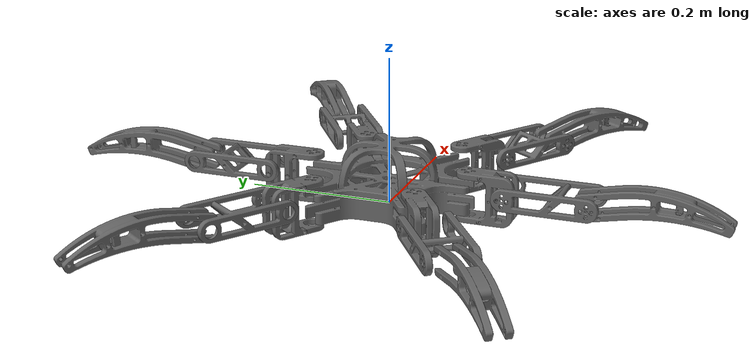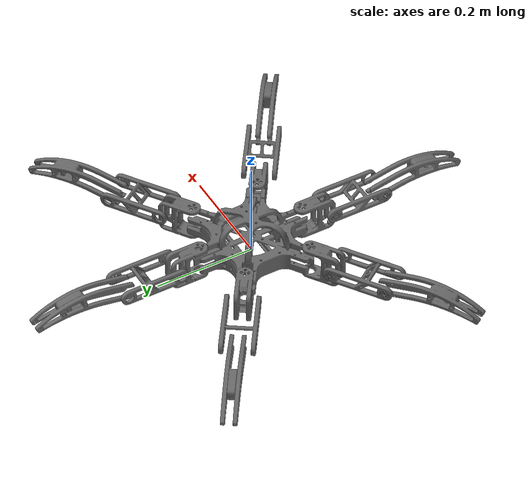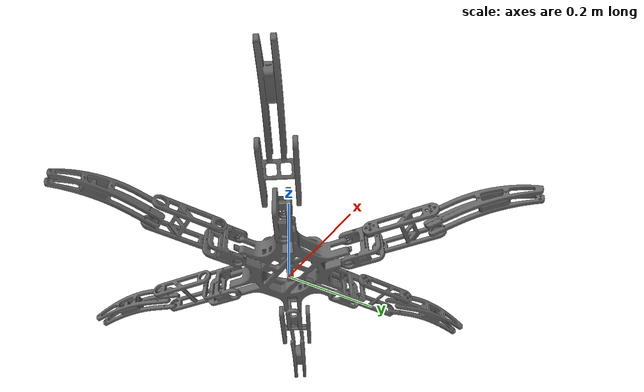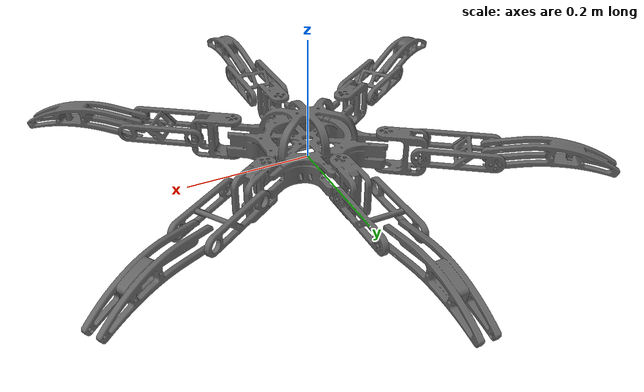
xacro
<?xml version="1.0" ?>
<robot name="hexapod" xmlns:xacro="http://ros.org/wiki/xacro">

  <xacro:include filename="$(find aecert_hexapod_description)/urdf/common_properties.xacro" />
  <xacro:include filename="$(find aecert_hexapod_description)/urdf/leg.xacro" />

  <xacro:property name="LEG_X_OFFS" value="0.1" />
  <xacro:property name="LEG_Y_OFFS" value="0.07" />
  <xacro:property name="MID_LEG_Y_OFFS" value="0.11" />
  <xacro:property name="LEG_YAW" value="0.6" />

  <link name="base_footprint"/>
  <link name="base_link">
    <inertial>
      <origin xyz="0 0 0" rpy="0 0 0" />
      <inertia
        ixx="4.2111447e-02" ixy="0" ixz="0"
        iyy="4.2111447e-02" iyz="0"
        izz="7.5254874e-02"
      />
      <mass value="1.3729096" />
    </inertial>

    <collision name="base_collision">
      <origin xyz="0 0 0.045" rpy="0 0 0" />
      <geometry>
        <box size="0.265 0.265 0.089" />
      </geometry>
    </collision>

    <visual name="base_visual">
      <origin xyz="0 0 0" rpy="0 0 0" />
      <geometry>
        <mesh scale="0.001 0.001 0.001" filename="$(find aecert_hexapod_description)/meshes/base.stl" />
      </geometry>
      <material name="light_black" />
    </visual>

  </link>

  <joint name="base_joint" type="fixed" >
    <origin xyz="0 0 0" rpy="0 0 0" />
    <parent link="base_footprint" />
    <child link="base_link" />
  </joint>

  <xacro:leg name="fl" parent="base_link" x_offs="${LEG_X_OFFS}" y_offs="${LEG_Y_OFFS}" yaw="${LEG_YAW}" />
  <xacro:leg name="fr" parent="base_link" x_offs="${LEG_X_OFFS}" y_offs="${-LEG_Y_OFFS}" yaw="${-LEG_YAW}" />
  <xacro:leg name="ml" parent="base_link" x_offs="0" y_offs="${MID_LEG_Y_OFFS}" yaw="${PI/2}" />
  <xacro:leg name="mr" parent="base_link" x_offs="0" y_offs="${-MID_LEG_Y_OFFS}" yaw="${-PI/2}" />
  <xacro:leg name="bl" parent="base_link" x_offs="${-LEG_X_OFFS}" y_offs="${LEG_Y_OFFS}" yaw="${PI-LEG_YAW}" />
  <xacro:leg name="br" parent="base_link" x_offs="${-LEG_X_OFFS}" y_offs="${-LEG_Y_OFFS}" yaw="${-PI+LEG_YAW}" />

  <xacro:include filename="$(find aecert_hexapod_control)/config/xacro_controls/leg_joint_control.xacro" />

  <ros2_control name="GazeboSimSystem" type="system">
    <hardware>
      <plugin>gz_ros2_control/GazeboSimSystem</plugin>
    </hardware>
    <xacro:leg_joint_control name="fl" />
    <xacro:leg_joint_control name="fr" />
    <xacro:leg_joint_control name="ml" />
    <xacro:leg_joint_control name="mr" />
    <xacro:leg_joint_control name="bl" />
    <xacro:leg_joint_control name="br" />
  </ros2_control>

  <gazebo>
    <plugin filename="gz_ros2_control-system" name="gz_ros2_control::GazeboSimROS2ControlPlugin">
      <parameters>$(find aecert_hexapod_control)/config/aecert_hexapod_controller.yaml</parameters>
    </plugin>
  </gazebo>

</robot>

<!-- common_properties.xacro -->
<robot name="xacro_properties" xmlns:xacro="http://ros.org/wiki/xacro">

  <!-- Init colour -->
  <material name="black">
      <color rgba="0.0 0.0 0.0 1.0"/>
  </material>

  <material name="dark">
    <color rgba="0.3 0.3 0.3 1.0"/>
  </material>
  <material name="light_black">
    <color rgba="0.4 0.4 0.4 1.0"/>
  </material>

  <material name="blue">
    <color rgba="0.0 0.0 0.8 1.0"/>
  </material>

  <material name="green">
    <color rgba="0.0 0.8 0.0 1.0"/>
  </material>

  <material name="grey">
    <color rgba="0.5 0.5 0.5 1.0"/>
  </material>

  <material name="orange">
    <color rgba="${255/255} ${108/255} ${10/255} 1.0"/>
  </material>

  <material name="brown">
    <color rgba="${222/255} ${207/255} ${195/255} 1.0"/>
  </material>

  <material name="red">
    <color rgba="0.8 0.0 0.0 1.0"/>
  </material>

  <material name="white">
    <color rgba="1.0 1.0 1.0 1.0"/>
  </material>

  <xacro:property name="PI" value="3.1415926535897931" />

</robot>

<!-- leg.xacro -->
<robot xmlns:xacro="http://www.ros.org/wiki/xacro">
  <xacro:include filename="$(find aecert_hexapod_description)/urdf/coxa.xacro" />
  <xacro:include filename="$(find aecert_hexapod_description)/urdf/femur.xacro" />
  <xacro:include filename="$(find aecert_hexapod_description)/urdf/tibia.xacro" />

  <xacro:macro name="leg" params="name parent x_offs y_offs yaw">

    <xacro:coxa_link name="coxa_${name}_link" />
    <xacro:coxa_joint name="coxa_${name}_joint"
      parent_link="${parent}"
      child_link="coxa_${name}_link"
      x_offs="${x_offs}"
      y_offs="${y_offs}"
      yaw="${yaw}"
    />

    <xacro:femur_link name="femur_${name}_link" />
    <xacro:femur_joint name="femur_${name}_joint"
      parent_link="coxa_${name}_link"
      child_link="femur_${name}_link"
    />

    <xacro:tibia_link name="tibia_${name}_link" />
    <xacro:tibia_joint name="tibia_${name}_joint"
      parent_link="femur_${name}_link"
      child_link="tibia_${name}_link"
    />

  </xacro:macro>

</robot>

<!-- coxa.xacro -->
<robot xmlns:xacro="http://www.ros.org/wiki/xacro">

  <xacro:macro name="coxa_link" params="name">
    <link name="${name}">
      <inertial>
        <origin xyz="0 0 0" rpy="0 0 0" />
        <mass value="1.3729096e+00" />
        <inertia
          ixx="4.2111447e-02" ixy="0" ixz="0"
          iyy="4.2111447e-02" iyz="0"
          izz="7.5254874e-02"
        />
      </inertial>

      <collision name="${name}_collision">
        <origin xyz="0.03 0 0" rpy="0 0 0" />
        <geometry>
          <box size="0.085 0.05 0.08" />
        </geometry>
      </collision>

      <visual name="${name}_visual">
        <origin xyz="0 0 0" rpy="0 0 0" />
        <geometry>
          <mesh scale="0.001 0.001 0.001" filename="$(find aecert_hexapod_description)/meshes/coxa.stl" />
        </geometry>
        <material name="light_black" />

      </visual>
    </link>
  </xacro:macro>

  <xacro:macro name="coxa_joint" params="name parent_link child_link x_offs y_offs yaw">
    <joint name="${name}" type="revolute">
      <origin xyz="${x_offs} ${y_offs} 0.025" rpy="0 0 ${yaw}" />
      <parent link="${parent_link}" />
      <child link="${child_link}" />
      <axis xyz="0 0 1" rpy="0 0 0" />
      <limit
        lower="-1.79769e+308"
        upper="1.79769e+308"
        effort="1000"
        velocity="1000"
      />
    </joint>

    <ros2_control name="GazeboSimSystem" type="system">
      <hardware>
        <plugin>gz_ros2_control/GazeboSimSystem</plugin>
      </hardware>
      <joint name="${name}">
        <command_interface name="position">
          <param name="min">{-2*PI}</param>
          <param name="max">{2*PI}</param>
        </command_interface>
        <command_interface name="velocity">
          <param name="min">-3.15</param>
          <param name="max">3.15</param>
        </command_interface>
        <state_interface name="position">
          <param name="initial_value">0.0</param>
        </state_interface>
        <state_interface name="velocity"/>
      </joint>
    </ros2_control>

  </xacro:macro>

</robot>

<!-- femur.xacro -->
<robot xmlns:xacro="http://www.ros.org/wiki/xacro">

  <xacro:macro name="femur_link" params="name">

    <link name="${name}">
      <inertial>
        <origin xyz="0 0 0" rpy="0 0 0" />
        <mass value="1.3729096e+00" />
        <inertia
          ixx="4.2111447e-02" ixy="0" ixz="0"
          iyy="4.2111447e-02" iyz="0"
          izz="7.5254874e-02"
        />
      </inertial>

      <collision name="${name}_collision">
        <origin xyz="0.06 0 0" rpy="0 0 0" />
        <geometry>
          <box size="0.14 0.07 0.04" />
        </geometry>
      </collision>

      <visual name="${name}_visual">
        <origin xyz="0 0 0" rpy="0 0 0" />
        <geometry>
          <mesh scale="0.001 0.001 0.001" filename="$(find aecert_hexapod_description)/meshes/femur.stl" />
        </geometry>
        <material name="light_black" />
      </visual>

    </link>

    </xacro:macro>

  <xacro:macro name="femur_joint" params="name parent_link child_link">
    <joint name="${name}" type="revolute">
      <origin xyz="0.055 0 0.01" rpy="0 0 0" />
      <parent link="${parent_link}" />
      <child link="${child_link}" />
      <axis xyz="0 1 0" rpy="0 0 0" />
      <limit
        lower="-1.79769e+308"
        upper="1.79769e+308"
        effort="1000"
        velocity="1000"
      />
    </joint>

  </xacro:macro>

</robot>

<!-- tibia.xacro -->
<robot xmlns:xacro="http://www.ros.org/wiki/xacro">

  <xacro:macro name="tibia_link" params="name">

    <link name="${name}">
      <inertial>
        <origin xyz="0 0 0" rpy="0 0 0" />
        <mass value="1.3729096e+00" />
        <inertia
          ixx="4.2111447e-02" ixy="0" ixz="0"
          iyy="4.2111447e-02" iyz="0"
          izz="7.5254874e-02"
        />
      </inertial>

      <collision name="${name}_collision">
        <origin xyz="0.06 0 0" rpy="0 0 0" />
        <geometry>
          <box size="0.14 0.07 0.04" />
        </geometry>
      </collision>

      <visual name="${name}_visual">
        <origin xyz="0 0 0" rpy="0 0 0" />
        <geometry>
          <mesh scale="0.001 0.001 0.001" filename="$(find aecert_hexapod_description)/meshes/tibia.stl" />
        </geometry>
        <material name="light_black" />

      </visual>

    </link>

    </xacro:macro>

  <xacro:macro name="tibia_joint" params="name parent_link child_link">
    <joint name="${name}" type="revolute">
      <origin xyz="0.12 0 0" rpy="0 0 0" />
      <parent link="${parent_link}" />
      <child link="${child_link}" />
      <axis xyz="0 1 0" rpy="0 0 0" />
      <limit
        lower="-1.79769e+308"
        upper="1.79769e+308"
        effort="1000"
        velocity="1000"
      />
    </joint>

  </xacro:macro>

</robot>
